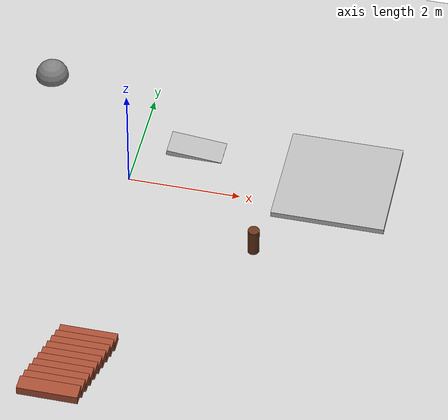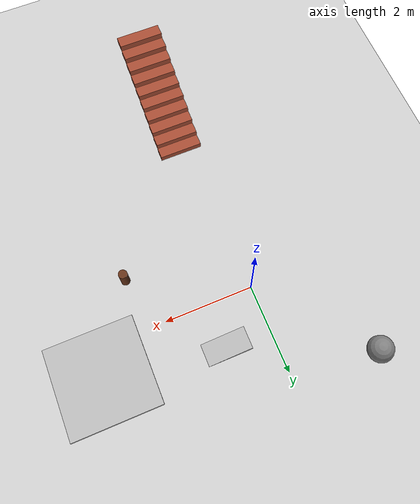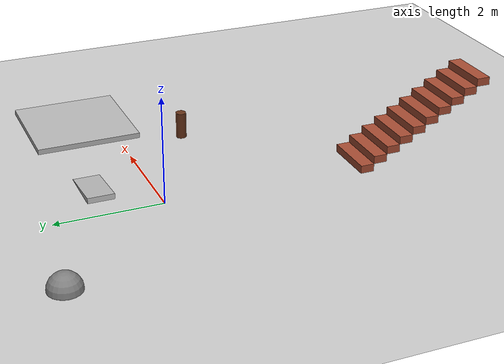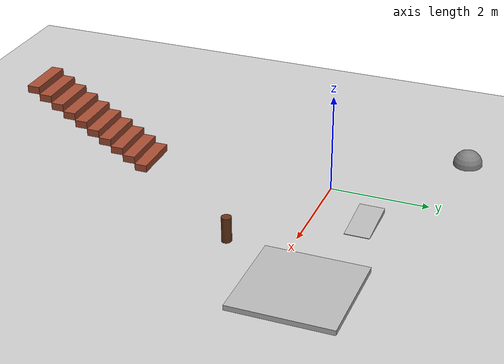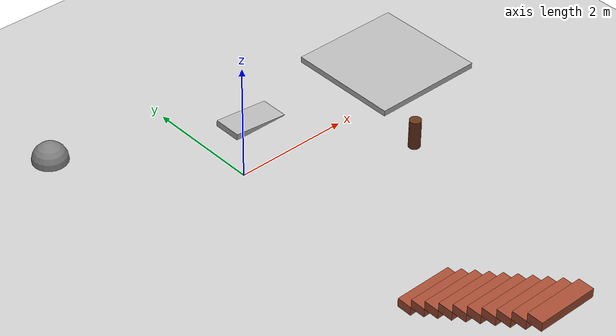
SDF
<sdf version="1.7">
  <world name="default">
    <physics name="default_physics" default="0" type="ode">
      <gravity>0 0 -9.81</gravity>
      <max_step_size>0.001</max_step_size>
      <real_time_update_rate>1000</real_time_update_rate>
    </physics>
    <model name="box">
      <static>true</static>
      <pose>1 1 0 0 0.1 0</pose>
      <link name="link">
        <collision name="collision">
          <geometry>
            <box>
              <size>1 0.5 0.1</size>
            </box>
          </geometry>
        </collision>
        <visual name="visual">
          <geometry>
            <box>
              <size>1 0.5 0.1</size>
            </box>
          </geometry>
        </visual>
      </link>
    </model>
    <model name="Untitled_1">
      <pose>0.211158 -3.14914 0 0 0 0</pose>
      <scale>1 1 1</scale>
      <link name="Stairs_3">
        <pose>0.211158 -3.14914 0 0 0 0</pose>
        <velocity>0 0 0 0 0 0</velocity>
        <acceleration>0 0 0 0 0 0</acceleration>
        <wrench>0 0 0 0 0 0</wrench>
      </link>
    </model>
    <model name="real_stairs">
      <pose>-1.42361 -0.099947 0 0 0 -1.57319</pose>
      <scale>1 1 1</scale>
      <link name="Stairs_1">
        <pose>-1.42361 -0.099947 0 0 0 -1.57319</pose>
        <velocity>0 0 0 0 0 0</velocity>
        <acceleration>0 0 0 0 0 0</acceleration>
        <wrench>0 0 0 0 0 0</wrench>
      </link>
    </model>
    <model name="Untitled_1_2">
      <static>true</static>
      <pose>0.211158 -3.14914 0 0 0 0</pose>
      <link name="Stairs_3">
        <visual name="Stairs_3_Visual_0">
          <pose>0 -0.67914 0.075 0 0 0</pose>
          <geometry>
            <box>
              <size>1 0.26 0.15</size>
            </box>
          </geometry>
          <material>
            <script>
              <uri>file://media/materials/scripts/gazebo.material</uri>
              <name>Gazebo/Bricks</name>
            </script>
            <ambient>1 1 1 1</ambient>
          </material>
          <meta>
            <layer>0</layer>
          </meta>
        </visual>
        <collision name="Stairs_3_Collision_0">
          <geometry>
            <box>
              <size>1 0.26 0.15</size>
            </box>
          </geometry>
          <pose>0 -0.67914 0.075 0 0 0</pose>
          <max_contacts>10</max_contacts>
          <surface>
            <contact>
              <ode />
            </contact>
            <bounce />
            <friction>
              <torsional>
                <ode />
              </torsional>
              <ode />
            </friction>
          </surface>
        </collision>
        <visual name="Stairs_3_Visual_1">
          <pose>0 -0.93914 0.225 0 0 0</pose>
          <geometry>
            <box>
              <size>1 0.26 0.15</size>
            </box>
          </geometry>
          <material>
            <script>
              <uri>file://media/materials/scripts/gazebo.material</uri>
              <name>Gazebo/Bricks</name>
            </script>
            <ambient>1 1 1 1</ambient>
          </material>
          <meta>
            <layer>0</layer>
          </meta>
        </visual>
        <collision name="Stairs_3_Collision_1">
          <geometry>
            <box>
              <size>1 0.26 0.15</size>
            </box>
          </geometry>
          <pose>0 -0.93914 0.225 0 0 0</pose>
          <max_contacts>10</max_contacts>
          <surface>
            <contact>
              <ode />
            </contact>
            <bounce />
            <friction>
              <torsional>
                <ode />
              </torsional>
              <ode />
            </friction>
          </surface>
        </collision>
        <visual name="Stairs_3_Visual_2">
          <pose>0 -1.19914 0.375 0 0 0</pose>
          <geometry>
            <box>
              <size>1 0.26 0.15</size>
            </box>
          </geometry>
          <material>
            <script>
              <uri>file://media/materials/scripts/gazebo.material</uri>
              <name>Gazebo/Bricks</name>
            </script>
            <ambient>1 1 1 1</ambient>
          </material>
          <meta>
            <layer>0</layer>
          </meta>
        </visual>
        <collision name="Stairs_3_Collision_2">
          <geometry>
            <box>
              <size>1 0.26 0.15</size>
            </box>
          </geometry>
          <pose>0 -1.19914 0.375 0 0 0</pose>
          <max_contacts>10</max_contacts>
          <surface>
            <contact>
              <ode />
            </contact>
            <bounce />
            <friction>
              <torsional>
                <ode />
              </torsional>
              <ode />
            </friction>
          </surface>
        </collision>
        <visual name="Stairs_3_Visual_3">
          <pose>0 -1.45914 0.525 0 0 0</pose>
          <geometry>
            <box>
              <size>1 0.26 0.15</size>
            </box>
          </geometry>
          <material>
            <script>
              <uri>file://media/materials/scripts/gazebo.material</uri>
              <name>Gazebo/Bricks</name>
            </script>
            <ambient>1 1 1 1</ambient>
          </material>
          <meta>
            <layer>0</layer>
          </meta>
        </visual>
        <collision name="Stairs_3_Collision_3">
          <geometry>
            <box>
              <size>1 0.26 0.15</size>
            </box>
          </geometry>
          <pose>0 -1.45914 0.525 0 0 0</pose>
          <max_contacts>10</max_contacts>
          <surface>
            <contact>
              <ode />
            </contact>
            <bounce />
            <friction>
              <torsional>
                <ode />
              </torsional>
              <ode />
            </friction>
          </surface>
        </collision>
        <visual name="Stairs_3_Visual_4">
          <pose>0 -1.71914 0.675 0 0 0</pose>
          <geometry>
            <box>
              <size>1 0.26 0.15</size>
            </box>
          </geometry>
          <material>
            <script>
              <uri>file://media/materials/scripts/gazebo.material</uri>
              <name>Gazebo/Bricks</name>
            </script>
            <ambient>1 1 1 1</ambient>
          </material>
          <meta>
            <layer>0</layer>
          </meta>
        </visual>
        <collision name="Stairs_3_Collision_4">
          <geometry>
            <box>
              <size>1 0.26 0.15</size>
            </box>
          </geometry>
          <pose>0 -1.71914 0.675 0 0 0</pose>
          <max_contacts>10</max_contacts>
          <surface>
            <contact>
              <ode />
            </contact>
            <bounce />
            <friction>
              <torsional>
                <ode />
              </torsional>
              <ode />
            </friction>
          </surface>
        </collision>
        <visual name="Stairs_3_Visual_5">
          <pose>0 -1.97914 0.825 0 0 0</pose>
          <geometry>
            <box>
              <size>1 0.26 0.15</size>
            </box>
          </geometry>
          <material>
            <script>
              <uri>file://media/materials/scripts/gazebo.material</uri>
              <name>Gazebo/Bricks</name>
            </script>
            <ambient>1 1 1 1</ambient>
          </material>
          <meta>
            <layer>0</layer>
          </meta>
        </visual>
        <collision name="Stairs_3_Collision_5">
          <geometry>
            <box>
              <size>1 0.26 0.15</size>
            </box>
          </geometry>
          <pose>0 -1.97914 0.825 0 0 0</pose>
          <max_contacts>10</max_contacts>
          <surface>
            <contact>
              <ode />
            </contact>
            <bounce />
            <friction>
              <torsional>
                <ode />
              </torsional>
              <ode />
            </friction>
          </surface>
        </collision>
        <visual name="Stairs_3_Visual_6">
          <pose>0 -2.23914 0.975 0 0 0</pose>
          <geometry>
            <box>
              <size>1 0.26 0.15</size>
            </box>
          </geometry>
          <material>
            <script>
              <uri>file://media/materials/scripts/gazebo.material</uri>
              <name>Gazebo/Bricks</name>
            </script>
            <ambient>1 1 1 1</ambient>
          </material>
          <meta>
            <layer>0</layer>
          </meta>
        </visual>
        <collision name="Stairs_3_Collision_6">
          <geometry>
            <box>
              <size>1 0.26 0.15</size>
            </box>
          </geometry>
          <pose>0 -2.23914 0.975 0 0 0</pose>
          <max_contacts>10</max_contacts>
          <surface>
            <contact>
              <ode />
            </contact>
            <bounce />
            <friction>
              <torsional>
                <ode />
              </torsional>
              <ode />
            </friction>
          </surface>
        </collision>
        <visual name="Stairs_3_Visual_7">
          <pose>0 -2.49914 1.125 0 0 0</pose>
          <geometry>
            <box>
              <size>1 0.26 0.15</size>
            </box>
          </geometry>
          <material>
            <script>
              <uri>file://media/materials/scripts/gazebo.material</uri>
              <name>Gazebo/Bricks</name>
            </script>
            <ambient>1 1 1 1</ambient>
          </material>
          <meta>
            <layer>0</layer>
          </meta>
        </visual>
        <collision name="Stairs_3_Collision_7">
          <geometry>
            <box>
              <size>1 0.26 0.15</size>
            </box>
          </geometry>
          <pose>0 -2.49914 1.125 0 0 0</pose>
          <max_contacts>10</max_contacts>
          <surface>
            <contact>
              <ode />
            </contact>
            <bounce />
            <friction>
              <torsional>
                <ode />
              </torsional>
              <ode />
            </friction>
          </surface>
        </collision>
        <visual name="Stairs_3_Visual_8">
          <pose>0 -2.75914 1.275 0 0 0</pose>
          <geometry>
            <box>
              <size>1 0.26 0.15</size>
            </box>
          </geometry>
          <material>
            <script>
              <uri>file://media/materials/scripts/gazebo.material</uri>
              <name>Gazebo/Bricks</name>
            </script>
            <ambient>1 1 1 1</ambient>
          </material>
          <meta>
            <layer>0</layer>
          </meta>
        </visual>
        <collision name="Stairs_3_Collision_8">
          <geometry>
            <box>
              <size>1 0.26 0.15</size>
            </box>
          </geometry>
          <pose>0 -2.75914 1.275 0 0 0</pose>
          <max_contacts>10</max_contacts>
          <surface>
            <contact>
              <ode />
            </contact>
            <bounce />
            <friction>
              <torsional>
                <ode />
              </torsional>
              <ode />
            </friction>
          </surface>
        </collision>
        <visual name="Stairs_3_Visual_9">
          <pose>0 -3.01914 1.425 0 0 0</pose>
          <geometry>
            <box>
              <size>1 0.26 0.15</size>
            </box>
          </geometry>
          <material>
            <script>
              <uri>file://media/materials/scripts/gazebo.material</uri>
              <name>Gazebo/Bricks</name>
            </script>
            <ambient>1 1 1 1</ambient>
          </material>
          <meta>
            <layer>0</layer>
          </meta>
        </visual>
        <collision name="Stairs_3_Collision_9">
          <geometry>
            <box>
              <size>1 0.26 0.15</size>
            </box>
          </geometry>
          <pose>0 -3.01914 1.425 0 0 0</pose>
          <max_contacts>10</max_contacts>
          <surface>
            <contact>
              <ode />
            </contact>
            <bounce />
            <friction>
              <torsional>
                <ode />
              </torsional>
              <ode />
            </friction>
          </surface>
        </collision>
        <self_collide>0</self_collide>
        <enable_wind>0</enable_wind>
        <kinematic>0</kinematic>
      </link>
    </model>
    <model name="box_clone">
      <pose>3.63081 0.612035 0.1 0 0 0</pose>
      <link name="link">
        <collision name="collision">
          <geometry>
            <box>
              <size>2 2 0.1</size>
            </box>
          </geometry>
          <max_contacts>10</max_contacts>
          <surface>
            <contact>
              <ode />
            </contact>
            <bounce />
            <friction>
              <torsional>
                <ode />
              </torsional>
              <ode />
            </friction>
          </surface>
        </collision>
        <visual name="visual">
          <geometry>
            <box>
              <size>2 2 0.1</size>
            </box>
          </geometry>
        </visual>
        <self_collide>0</self_collide>
        <enable_wind>0</enable_wind>
        <kinematic>0</kinematic>
      </link>
    </model>
    <include>
      <uri>https://fuel.ignitionrobotics.org/1.0/OpenRobotics/models/Ground Plane</uri>
    </include>
    <include>
      <uri>https://fuel.ignitionrobotics.org/1.0/OpenRobotics/models/Sun</uri>
    </include>
    <model name="tree_1">
      <pose>2.5 -1.2 0 0 0 0</pose>
      <static>true</static>
      <link name="tree_trunk">
        <visual name="trunk_visual">
          <geometry>
            <cylinder>
              <radius>0.1</radius>
              <length>1.0</length>
            </cylinder>
          </geometry>
          <material>
            <ambient>0.4 0.2 0.1 1</ambient>
          </material>
        </visual>
        <collision name="trunk_collision">
          <geometry>
            <cylinder>
              <radius>0.1</radius>
              <length>1.0</length>
            </cylinder>
          </geometry>
        </collision>
      </link>
    </model>
    <model name="rock_1">
      <pose>-2.0 2.3 0 0 0 0</pose>
      <static>true</static>
      <link name="rock_link">
        <visual name="rock_visual">
          <geometry>
            <sphere>
              <radius>0.3</radius>
            </sphere>
          </geometry>
          <material>
            <ambient>0.5 0.5 0.5 1</ambient>
          </material>
        </visual>
        <collision name="rock_collision">
          <geometry>
            <sphere>
              <radius>0.3</radius>
            </sphere>
          </geometry>
        </collision>
      </link>
    </model>
  </world>
</sdf>
